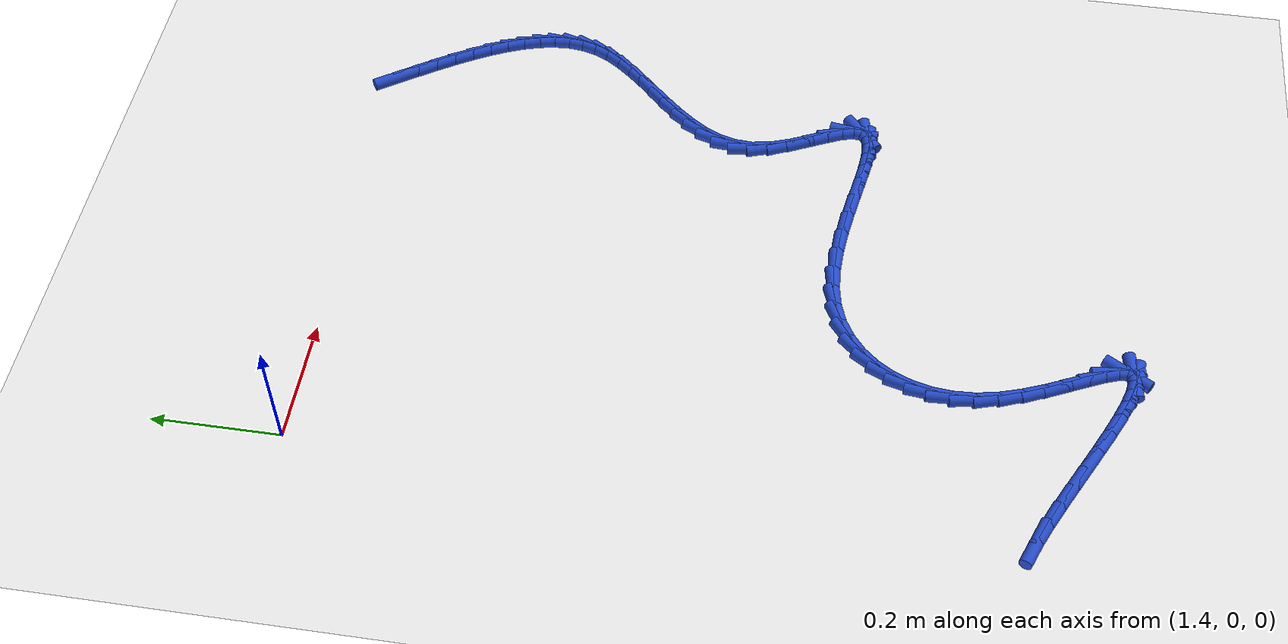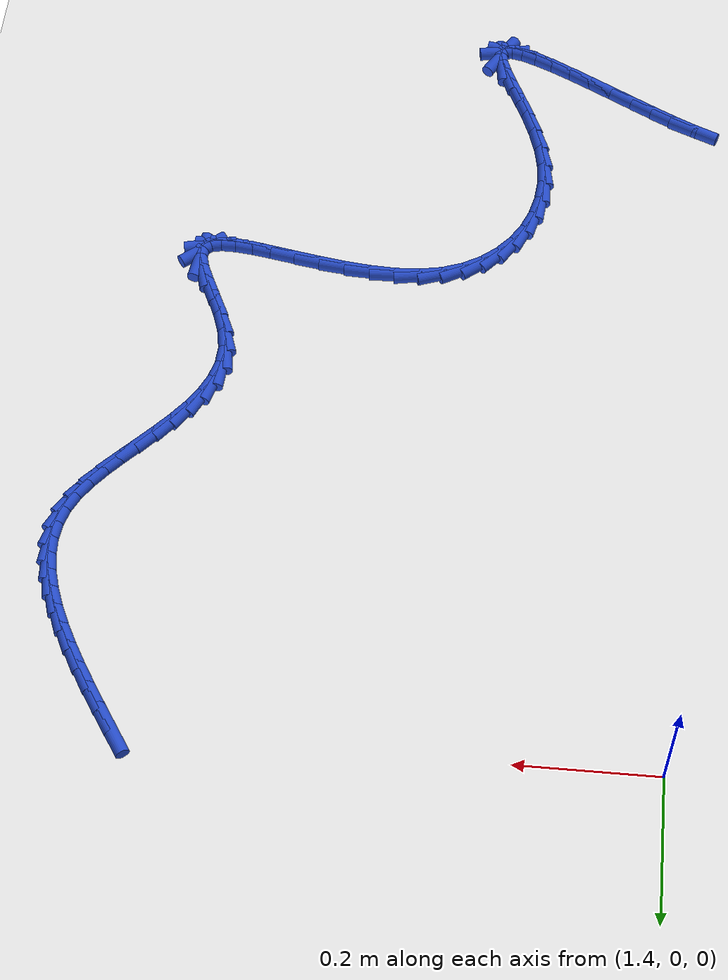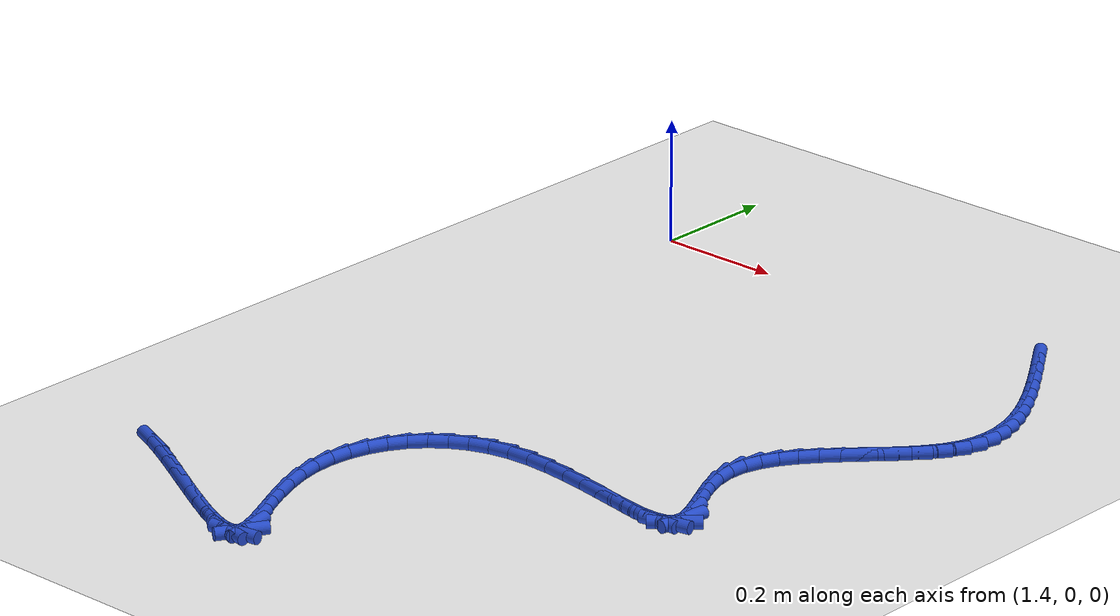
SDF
<sdf version="1.6">
 <world name="default">
  <model name="ground_plane">
   <static>1</static>
   <link name="link">
    <collision name="collision">
     <geometry><plane><normal>0 0 1</normal><size>100 100</size></plane></geometry>
     <surface><friction><ode><mu>100</mu><mu2>50</mu2></ode></friction></surface>
    </collision>
    <visual name="visual">
     <cast_shadows>0</cast_shadows>
     <geometry><plane><normal>0 0 1</normal><size>100 100</size></plane></geometry>
     <material>
      <script><uri>file://media/materials/scripts/gazebo.material</uri><name>Gazebo/WhiteGlow</name></script>
     </material>
    </visual>
   </link>
  </model>
  <model name="line">
   <link name="link_147">
    <pose>2.130528840765255 0.0005263833694277922 0.01 0 1.57 -0.9762441145292009</pose>
    <collision name="collision">
     <geometry><cylinder><radius>0.01</radius><length>0.08</length></cylinder></geometry>
    </collision>
    <visual name="visual">
     <material>
      <script><name>Gazebo/Blue</name><uri>file://media/materials/scripts/gazebo.material</uri></script>
     </material>
     <geometry><cylinder><radius>0.01</radius><length>0.08</length></cylinder></geometry>
    </visual>
   </link>
   <link name="link_148">
    <pose>2.1501936083140567 -0.02855624573181361 0.01 0 1.57 -0.985818714891348</pose>
    <collision name="collision">
     <geometry><cylinder><radius>0.01</radius><length>0.08</length></cylinder></geometry>
    </collision>
    <visual name="visual">
     <material>
      <script><name>Gazebo/Blue</name><uri>file://media/materials/scripts/gazebo.material</uri></script>
     </material>
     <geometry><cylinder><radius>0.01</radius><length>0.08</length></cylinder></geometry>
    </visual>
   </link>
   <link name="link_149">
    <pose>2.1693406343630537 -0.05746588208851436 0.01 0 1.57 -1.0042207485879129</pose>
    <collision name="collision">
     <geometry><cylinder><radius>0.01</radius><length>0.08</length></cylinder></geometry>
    </collision>
    <visual name="visual">
     <material>
      <script><name>Gazebo/Blue</name><uri>file://media/materials/scripts/gazebo.material</uri></script>
     </material>
     <geometry><cylinder><radius>0.01</radius><length>0.08</length></cylinder></geometry>
    </visual>
   </link>
   <link name="link_150">
    <pose>2.1875888722925536 -0.0861514138360954 0.01 0 1.57 -1.032392455782856</pose>
    <collision name="collision">
     <geometry><cylinder><radius>0.01</radius><length>0.08</length></cylinder></geometry>
    </collision>
    <visual name="visual">
     <material>
      <script><name>Gazebo/Blue</name><uri>file://media/materials/scripts/gazebo.material</uri></script>
     </material>
     <geometry><cylinder><radius>0.01</radius><length>0.08</length></cylinder></geometry>
    </visual>
   </link>
   <link name="link_151">
    <pose>2.2045572754828657 -0.11456172910997753 0.01 0 1.57 -1.071751977473961</pose>
    <collision name="collision">
     <geometry><cylinder><radius>0.01</radius><length>0.08</length></cylinder></geometry>
    </collision>
    <visual name="visual">
     <material>
      <script><name>Gazebo/Blue</name><uri>file://media/materials/scripts/gazebo.material</uri></script>
     </material>
     <geometry><cylinder><radius>0.01</radius><length>0.08</length></cylinder></geometry>
    </visual>
   </link>
   <link name="link_152">
    <pose>2.2198647973142975 -0.14264571604558068 0.01 0 1.57 -1.124260930399372</pose>
    <collision name="collision">
     <geometry><cylinder><radius>0.01</radius><length>0.08</length></cylinder></geometry>
    </collision>
    <visual name="visual">
     <material>
      <script><name>Gazebo/Blue</name><uri>file://media/materials/scripts/gazebo.material</uri></script>
     </material>
     <geometry><cylinder><radius>0.01</radius><length>0.08</length></cylinder></geometry>
    </visual>
   </link>
   <link name="link_153">
    <pose>2.233130391167159 -0.17035226277832766 0.01 0 1.57 -1.1924591229250672</pose>
    <collision name="collision">
     <geometry><cylinder><radius>0.01</radius><length>0.08</length></cylinder></geometry>
    </collision>
    <visual name="visual">
     <material>
      <script><name>Gazebo/Blue</name><uri>file://media/materials/scripts/gazebo.material</uri></script>
     </material>
     <geometry><cylinder><radius>0.01</radius><length>0.08</length></cylinder></geometry>
    </visual>
   </link>
   <link name="link_154">
    <pose>2.2439730104217577 -0.1976302574436383 0.01 0 1.57 -1.2793703842895152</pose>
    <collision name="collision">
     <geometry><cylinder><radius>0.01</radius><length>0.08</length></cylinder></geometry>
    </collision>
    <visual name="visual">
     <material>
      <script><name>Gazebo/Blue</name><uri>file://media/materials/scripts/gazebo.material</uri></script>
     </material>
     <geometry><cylinder><radius>0.01</radius><length>0.08</length></cylinder></geometry>
    </visual>
   </link>
   <link name="link_155">
    <pose>2.252011608458402 -0.2244285881769335 0.01 0 1.57 -1.388084231591885</pose>
    <collision name="collision">
     <geometry><cylinder><radius>0.01</radius><length>0.08</length></cylinder></geometry>
    </collision>
    <visual name="visual">
     <material>
      <script><name>Gazebo/Blue</name><uri>file://media/materials/scripts/gazebo.material</uri></script>
     </material>
     <geometry><cylinder><radius>0.01</radius><length>0.08</length></cylinder></geometry>
    </visual>
   </link>
   <link name="link_156">
    <pose>2.256865138657401 -0.25069614311363425 0.01 0 1.57 -1.5207162855102154</pose>
    <collision name="collision">
     <geometry><cylinder><radius>0.01</radius><length>0.08</length></cylinder></geometry>
    </collision>
    <visual name="visual">
     <material>
      <script><name>Gazebo/Blue</name><uri>file://media/materials/scripts/gazebo.material</uri></script>
     </material>
     <geometry><cylinder><radius>0.01</radius><length>0.08</length></cylinder></geometry>
    </visual>
   </link>
   <link name="link_157">
    <pose>2.2581525543990635 -0.2763818103891613 0.01 0 1.57 1.4650263738552232</pose>
    <collision name="collision">
     <geometry><cylinder><radius>0.01</radius><length>0.08</length></cylinder></geometry>
    </collision>
    <visual name="visual">
     <material>
      <script><name>Gazebo/Blue</name><uri>file://media/materials/scripts/gazebo.material</uri></script>
     </material>
     <geometry><cylinder><radius>0.01</radius><length>0.08</length></cylinder></geometry>
    </visual>
   </link>
   <link name="link_158">
    <pose>2.2554928090636963 -0.30143447813893554 0.01 0 1.57 1.2915291639267452</pose>
    <collision name="collision">
     <geometry><cylinder><radius>0.01</radius><length>0.08</length></cylinder></geometry>
    </collision>
    <visual name="visual">
     <material>
      <script><name>Gazebo/Blue</name><uri>file://media/materials/scripts/gazebo.material</uri></script>
     </material>
     <geometry><cylinder><radius>0.01</radius><length>0.08</length></cylinder></geometry>
    </visual>
   </link>
   <link name="link_159">
    <pose>2.2485048560316097 -0.3258030344983779 0.01 0 1.57 1.1149917343752052</pose>
    <collision name="collision">
     <geometry><cylinder><radius>0.01</radius><length>0.08</length></cylinder></geometry>
    </collision>
    <visual name="visual">
     <material>
      <script><name>Gazebo/Blue</name><uri>file://media/materials/scripts/gazebo.material</uri></script>
     </material>
     <geometry><cylinder><radius>0.01</radius><length>0.08</length></cylinder></geometry>
    </visual>
   </link>
   <link name="link_160">
    <pose>2.236909716187266 -0.34945527435203994 0.01 0 1.57 0.9749580835684667</pose>
    <collision name="collision">
     <geometry><cylinder><radius>0.01</radius><length>0.08</length></cylinder></geometry>
    </collision>
    <visual name="visual">
     <material>
      <script><name>Gazebo/Blue</name><uri>file://media/materials/scripts/gazebo.material</uri></script>
     </material>
     <geometry><cylinder><radius>0.01</radius><length>0.08</length></cylinder></geometry>
    </visual>
   </link>
   <link name="link_161">
    <pose>2.221273796473859 -0.372515589948769 0.01 0 1.57 0.8812667807886916</pose>
    <collision name="collision">
     <geometry><cylinder><radius>0.01</radius><length>0.08</length></cylinder></geometry>
    </collision>
    <visual name="visual">
     <material>
      <script><name>Gazebo/Blue</name><uri>file://media/materials/scripts/gazebo.material</uri></script>
     </material>
     <geometry><cylinder><radius>0.01</radius><length>0.08</length></cylinder></geometry>
    </visual>
   </link>
   <link name="link_162">
    <pose>2.2025812181634947 -0.395185749976569 0.01 0 1.57 0.8251549268784025</pose>
    <collision name="collision">
     <geometry><cylinder><radius>0.01</radius><length>0.08</length></cylinder></geometry>
    </collision>
    <visual name="visual">
     <material>
      <script><name>Gazebo/Blue</name><uri>file://media/materials/scripts/gazebo.material</uri></script>
     </material>
     <geometry><cylinder><radius>0.01</radius><length>0.08</length></cylinder></geometry>
    </visual>
   </link>
   <link name="link_163">
    <pose>2.1818190633711687 -0.4176680715831529 0.01 0 1.57 0.8001045874106141</pose>
    <collision name="collision">
     <geometry><cylinder><radius>0.01</radius><length>0.08</length></cylinder></geometry>
    </collision>
    <visual name="visual">
     <material>
      <script><name>Gazebo/Blue</name><uri>file://media/materials/scripts/gazebo.material</uri></script>
     </material>
     <geometry><cylinder><radius>0.01</radius><length>0.08</length></cylinder></geometry>
    </visual>
   </link>
   <link name="link_164">
    <pose>2.1599744142118733 -0.4401648719162339 0.01 0 1.57 0.8027194193833097</pose>
    <collision name="collision">
     <geometry><cylinder><radius>0.01</radius><length>0.08</length></cylinder></geometry>
    </collision>
    <visual name="visual">
     <material>
      <script><name>Gazebo/Blue</name><uri>file://media/materials/scripts/gazebo.material</uri></script>
     </material>
     <geometry><cylinder><radius>0.01</radius><length>0.08</length></cylinder></geometry>
    </visual>
   </link>
   <link name="link_165">
    <pose>2.1380343528006054 -0.46287846812352534 0.01 0 1.57 0.8325398912611454</pose>
    <collision name="collision">
     <geometry><cylinder><radius>0.01</radius><length>0.08</length></cylinder></geometry>
    </collision>
    <visual name="visual">
     <material>
      <script><name>Gazebo/Blue</name><uri>file://media/materials/scripts/gazebo.material</uri></script>
     </material>
     <geometry><cylinder><radius>0.01</radius><length>0.08</length></cylinder></geometry>
    </visual>
   </link>
   <link name="link_166">
    <pose>2.116985961252358 -0.4860111773527403 0.01 0 1.57 0.8918003914497982</pose>
    <collision name="collision">
     <geometry><cylinder><radius>0.01</radius><length>0.08</length></cylinder></geometry>
    </collision>
    <visual name="visual">
     <material>
      <script><name>Gazebo/Blue</name><uri>file://media/materials/scripts/gazebo.material</uri></script>
     </material>
     <geometry><cylinder><radius>0.01</radius><length>0.08</length></cylinder></geometry>
    </visual>
   </link>
   <link name="link_167">
    <pose>2.0978163216821257 -0.5097653167515922 0.01 0 1.57 0.9850915758883707</pose>
    <collision name="collision">
     <geometry><cylinder><radius>0.01</radius><length>0.08</length></cylinder></geometry>
    </collision>
    <visual name="visual">
     <material>
      <script><name>Gazebo/Blue</name><uri>file://media/materials/scripts/gazebo.material</uri></script>
     </material>
     <geometry><cylinder><radius>0.01</radius><length>0.08</length></cylinder></geometry>
    </visual>
   </link>
   <link name="link_168">
    <pose>2.081512516204903 -0.5343432034677938 0.01 0 1.57 1.118178524517499</pose>
    <collision name="collision">
     <geometry><cylinder><radius>0.01</radius><length>0.08</length></cylinder></geometry>
    </collision>
    <visual name="visual">
     <material>
      <script><name>Gazebo/Blue</name><uri>file://media/materials/scripts/gazebo.material</uri></script>
     </material>
     <geometry><cylinder><radius>0.01</radius><length>0.08</length></cylinder></geometry>
    </visual>
   </link>
   <link name="link_169">
    <pose>2.069061626935685 -0.559947154649058 0.01 0 1.57 1.2944096552485327</pose>
    <collision name="collision">
     <geometry><cylinder><radius>0.01</radius><length>0.08</length></cylinder></geometry>
    </collision>
    <visual name="visual">
     <material>
      <script><name>Gazebo/Blue</name><uri>file://media/materials/scripts/gazebo.material</uri></script>
     </material>
     <geometry><cylinder><radius>0.01</radius><length>0.08</length></cylinder></geometry>
    </visual>
   </link>
   <link name="link_170">
    <pose>2.061450735989466 -0.5867794874430995 0.01 0 1.57 1.507765311409249</pose>
    <collision name="collision">
     <geometry><cylinder><radius>0.01</radius><length>0.08</length></cylinder></geometry>
    </collision>
    <visual name="visual">
     <material>
      <script><name>Gazebo/Blue</name><uri>file://media/materials/scripts/gazebo.material</uri></script>
     </material>
     <geometry><cylinder><radius>0.01</radius><length>0.08</length></cylinder></geometry>
    </visual>
   </link>
   <link name="link_171">
    <pose>2.0596669254812405 -0.6150425189976306 0.01 0 1.57 -1.4078340556951325</pose>
    <collision name="collision">
     <geometry><cylinder><radius>0.01</radius><length>0.08</length></cylinder></geometry>
    </collision>
    <visual name="visual">
     <material>
      <script><name>Gazebo/Blue</name><uri>file://media/materials/scripts/gazebo.material</uri></script>
     </material>
     <geometry><cylinder><radius>0.01</radius><length>0.08</length></cylinder></geometry>
    </visual>
   </link>
   <link name="link_172">
    <pose>2.064573603392962 -0.6448847991997427 0.01 0 1.57 -1.2416742061080908</pose>
    <collision name="collision">
     <geometry><cylinder><radius>0.01</radius><length>0.08</length></cylinder></geometry>
    </collision>
    <visual name="visual">
     <material>
      <script><name>Gazebo/Blue</name><uri>file://media/materials/scripts/gazebo.material</uri></script>
     </material>
     <geometry><cylinder><radius>0.01</radius><length>0.08</length></cylinder></geometry>
    </visual>
   </link>
   <link name="link_173">
    <pose>2.075063576343375 -0.6755981600887996 0.01 0 1.57 -1.1534599994224117</pose>
    <collision name="collision">
     <geometry><cylinder><radius>0.01</radius><length>0.08</length></cylinder></geometry>
    </collision>
    <visual name="visual">
     <material>
      <script><name>Gazebo/Blue</name><uri>file://media/materials/scripts/gazebo.material</uri></script>
     </material>
     <geometry><cylinder><radius>0.01</radius><length>0.08</length></cylinder></geometry>
    </visual>
   </link>
   <link name="link_174">
    <pose>2.088448823344532 -0.7057871697805148 0.01 0 1.57 -1.123620685592771</pose>
    <collision name="collision">
     <geometry><cylinder><radius>0.01</radius><length>0.08</length></cylinder></geometry>
    </collision>
    <visual name="visual">
     <material>
      <script><name>Gazebo/Blue</name><uri>file://media/materials/scripts/gazebo.material</uri></script>
     </material>
     <geometry><cylinder><radius>0.01</radius><length>0.08</length></cylinder></geometry>
    </visual>
   </link>
   <link name="link_175">
    <pose>2.101996792901747 -0.7340370367775395 0.01 0 1.57 -1.1554844355275993</pose>
    <collision name="collision">
     <geometry><cylinder><radius>0.01</radius><length>0.08</length></cylinder></geometry>
    </collision>
    <visual name="visual">
     <material>
      <script><name>Gazebo/Blue</name><uri>file://media/materials/scripts/gazebo.material</uri></script>
     </material>
     <geometry><cylinder><radius>0.01</radius><length>0.08</length></cylinder></geometry>
    </visual>
   </link>
   <link name="link_176">
    <pose>2.1129749335203347 -0.7589329695825249 0.01 0 1.57 -1.2959391538753358</pose>
    <collision name="collision">
     <geometry><cylinder><radius>0.01</radius><length>0.08</length></cylinder></geometry>
    </collision>
    <visual name="visual">
     <material>
      <script><name>Gazebo/Blue</name><uri>file://media/materials/scripts/gazebo.material</uri></script>
     </material>
     <geometry><cylinder><radius>0.01</radius><length>0.08</length></cylinder></geometry>
    </visual>
   </link>
   <link name="link_177">
    <pose>2.118650693705609 -0.7790601766981219 0.01 0 1.57 1.4280456699329243</pose>
    <collision name="collision">
     <geometry><cylinder><radius>0.01</radius><length>0.08</length></cylinder></geometry>
    </collision>
    <visual name="visual">
     <material>
      <script><name>Gazebo/Blue</name><uri>file://media/materials/scripts/gazebo.material</uri></script>
     </material>
     <geometry><cylinder><radius>0.01</radius><length>0.08</length></cylinder></geometry>
    </visual>
   </link>
   <link name="link_178">
    <pose>2.1166168405381853 -0.7932108593647582 0.01 0 1.57 0.709885867462146</pose>
    <collision name="collision">
     <geometry><cylinder><radius>0.01</radius><length>0.08</length></cylinder></geometry>
    </collision>
    <visual name="visual">
     <material>
      <script><name>Gazebo/Blue</name><uri>file://media/materials/scripts/gazebo.material</uri></script>
     </material>
     <geometry><cylinder><radius>0.01</radius><length>0.08</length></cylinder></geometry>
    </visual>
   </link>
   <link name="link_179">
    <pose>2.1067896815055693 -0.8016556342183284 0.01 0 1.57 0.21540440081551376</pose>
    <collision name="collision">
     <geometry><cylinder><radius>0.01</radius><length>0.08</length></cylinder></geometry>
    </collision>
    <visual name="visual">
     <material>
      <script><name>Gazebo/Blue</name><uri>file://media/materials/scripts/gazebo.material</uri></script>
     </material>
     <geometry><cylinder><radius>0.01</radius><length>0.08</length></cylinder></geometry>
    </visual>
   </link>
   <link name="link_180">
    <pose>2.090096156091772 -0.8053081598226186 0.01 0 1.57 -0.009873321246339906</pose>
    <collision name="collision">
     <geometry><cylinder><radius>0.01</radius><length>0.08</length></cylinder></geometry>
    </collision>
    <visual name="visual">
     <material>
      <script><name>Gazebo/Blue</name><uri>file://media/materials/scripts/gazebo.material</uri></script>
     </material>
     <geometry><cylinder><radius>0.01</radius><length>0.08</length></cylinder></geometry>
    </visual>
   </link>
   <link name="link_181">
    <pose>2.0674673471344573 -0.8050847310621845 0.01 0 1.57 -0.11468603769733905</pose>
    <collision name="collision">
     <geometry><cylinder><radius>0.01</radius><length>0.08</length></cylinder></geometry>
    </collision>
    <visual name="visual">
     <material>
      <script><name>Gazebo/Blue</name><uri>file://media/materials/scripts/gazebo.material</uri></script>
     </material>
     <geometry><cylinder><radius>0.01</radius><length>0.08</length></cylinder></geometry>
    </visual>
   </link>
   <link name="link_182">
    <pose>2.0398343374712917 -0.8019016428215815 0.01 0 1.57 -0.1633713090087601</pose>
    <collision name="collision">
     <geometry><cylinder><radius>0.01</radius><length>0.08</length></cylinder></geometry>
    </collision>
    <visual name="visual">
     <material>
      <script><name>Gazebo/Blue</name><uri>file://media/materials/scripts/gazebo.material</uri></script>
     </material>
     <geometry><cylinder><radius>0.01</radius><length>0.08</length></cylinder></geometry>
    </visual>
   </link>
   <link name="link_183">
    <pose>2.008128209939939 -0.7966751899853649 0.01 0 1.57 -0.1803393709664734</pose>
    <collision name="collision">
     <geometry><cylinder><radius>0.01</radius><length>0.08</length></cylinder></geometry>
    </collision>
    <visual name="visual">
     <material>
      <script><name>Gazebo/Blue</name><uri>file://media/materials/scripts/gazebo.material</uri></script>
     </material>
     <geometry><cylinder><radius>0.01</radius><length>0.08</length></cylinder></geometry>
    </visual>
   </link>
   <link name="link_184">
    <pose>1.9732800473780656 -0.7903216674380906 0.01 0 1.57 -0.17531205188414328</pose>
    <collision name="collision">
     <geometry><cylinder><radius>0.01</radius><length>0.08</length></cylinder></geometry>
    </collision>
    <visual name="visual">
     <material>
      <script><name>Gazebo/Blue</name><uri>file://media/materials/scripts/gazebo.material</uri></script>
     </material>
     <geometry><cylinder><radius>0.01</radius><length>0.08</length></cylinder></geometry>
    </visual>
   </link>
   <link name="link_185">
    <pose>1.9362209326233353 -0.7837573700643139 0.01 0 1.57 -0.1516419996065423</pose>
    <collision name="collision">
     <geometry><cylinder><radius>0.01</radius><length>0.08</length></cylinder></geometry>
    </collision>
    <visual name="visual">
     <material>
      <script><name>Gazebo/Blue</name><uri>file://media/materials/scripts/gazebo.material</uri></script>
     </material>
     <geometry><cylinder><radius>0.01</radius><length>0.08</length></cylinder></geometry>
    </visual>
   </link>
   <link name="link_186">
    <pose>1.897881948513414 -0.7778985927485904 0.01 0 1.57 -0.10908211775964444</pose>
    <collision name="collision">
     <geometry><cylinder><radius>0.01</radius><length>0.08</length></cylinder></geometry>
    </collision>
    <visual name="visual">
     <material>
      <script><name>Gazebo/Blue</name><uri>file://media/materials/scripts/gazebo.material</uri></script>
     </material>
     <geometry><cylinder><radius>0.01</radius><length>0.08</length></cylinder></geometry>
    </visual>
   </link>
   <link name="link_187">
    <pose>1.8591941778859662 -0.7736616303754753 0.01 0 1.57 -0.044553396880635</pose>
    <collision name="collision">
     <geometry><cylinder><radius>0.01</radius><length>0.08</length></cylinder></geometry>
    </collision>
    <visual name="visual">
     <material>
      <script><name>Gazebo/Blue</name><uri>file://media/materials/scripts/gazebo.material</uri></script>
     </material>
     <geometry><cylinder><radius>0.01</radius><length>0.08</length></cylinder></geometry>
    </visual>
   </link>
   <link name="link_188">
    <pose>1.8210887035786576 -0.7719627778295246 0.01 0 1.57 0.04793950946284346</pose>
    <collision name="collision">
     <geometry><cylinder><radius>0.01</radius><length>0.08</length></cylinder></geometry>
    </collision>
    <visual name="visual">
     <material>
      <script><name>Gazebo/Blue</name><uri>file://media/materials/scripts/gazebo.material</uri></script>
     </material>
     <geometry><cylinder><radius>0.01</radius><length>0.08</length></cylinder></geometry>
    </visual>
   </link>
   <link name="link_189">
    <pose>1.7844966084291531 -0.7737183299952932 0.01 0 1.57 0.1772797217564352</pose>
    <collision name="collision">
     <geometry><cylinder><radius>0.01</radius><length>0.08</length></cylinder></geometry>
    </collision>
    <visual name="visual">
     <material>
      <script><name>Gazebo/Blue</name><uri>file://media/materials/scripts/gazebo.material</uri></script>
     </material>
     <geometry><cylinder><radius>0.01</radius><length>0.08</length></cylinder></geometry>
    </visual>
   </link>
   <link name="link_190">
    <pose>1.7503449367664132 -0.779836962547127 0.01 0 1.57 0.3375057958788652</pose>
    <collision name="collision">
     <geometry><cylinder><radius>0.01</radius><length>0.08</length></cylinder></geometry>
    </collision>
    <visual name="visual">
     <material>
      <script><name>Gazebo/Blue</name><uri>file://media/materials/scripts/gazebo.material</uri></script>
     </material>
     <geometry><cylinder><radius>0.01</radius><length>0.08</length></cylinder></geometry>
    </visual>
   </link>
   <link name="link_191">
    <pose>1.719298308230481 -0.7907322503646624 0.01 0 1.57 0.504582571227682</pose>
    <collision name="collision">
     <geometry><cylinder><radius>0.01</radius><length>0.08</length></cylinder></geometry>
    </collision>
    <visual name="visual">
     <material>
      <script><name>Gazebo/Blue</name><uri>file://media/materials/scripts/gazebo.material</uri></script>
     </material>
     <geometry><cylinder><radius>0.01</radius><length>0.08</length></cylinder></geometry>
    </visual>
   </link>
   <link name="link_192">
    <pose>1.6916025765825597 -0.806027708061996 0.01 0 1.57 0.6732057477473512</pose>
    <collision name="collision">
     <geometry><cylinder><radius>0.01</radius><length>0.08</length></cylinder></geometry>
    </collision>
    <visual name="visual">
     <material>
      <script><name>Gazebo/Blue</name><uri>file://media/materials/scripts/gazebo.material</uri></script>
     </material>
     <geometry><cylinder><radius>0.01</radius><length>0.08</length></cylinder></geometry>
    </visual>
   </link>
   <link name="link_193">
    <pose>1.6674661318003559 -0.8252761695979122 0.01 0 1.57 0.8406609866592692</pose>
    <collision name="collision">
     <geometry><cylinder><radius>0.01</radius><length>0.08</length></cylinder></geometry>
    </collision>
    <visual name="visual">
     <material>
      <script><name>Gazebo/Blue</name><uri>file://media/materials/scripts/gazebo.material</uri></script>
     </material>
     <geometry><cylinder><radius>0.01</radius><length>0.08</length></cylinder></geometry>
    </visual>
   </link>
   <link name="link_194">
    <pose>1.6470973638615753 -0.848030468931196 0.01 0 1.57 1.0049978668650177</pose>
    <collision name="collision">
     <geometry><cylinder><radius>0.01</radius><length>0.08</length></cylinder></geometry>
    </collision>
    <visual name="visual">
     <material>
      <script><name>Gazebo/Blue</name><uri>file://media/materials/scripts/gazebo.material</uri></script>
     </material>
     <geometry><cylinder><radius>0.01</radius><length>0.08</length></cylinder></geometry>
    </visual>
   </link>
   <link name="link_195">
    <pose>1.6307046627439237 -0.8738434400206325 0.01 0 1.57 1.1651223552188699</pose>
    <collision name="collision">
     <geometry><cylinder><radius>0.01</radius><length>0.08</length></cylinder></geometry>
    </collision>
    <visual name="visual">
     <material>
      <script><name>Gazebo/Blue</name><uri>file://media/materials/scripts/gazebo.material</uri></script>
     </material>
     <geometry><cylinder><radius>0.01</radius><length>0.08</length></cylinder></geometry>
    </visual>
   </link>
   <link name="link_196">
    <pose>1.6184964184251065 -0.9022679168250063 0.01 0 1.57 1.3206493124988872</pose>
    <collision name="collision">
     <geometry><cylinder><radius>0.01</radius><length>0.08</length></cylinder></geometry>
    </collision>
    <visual name="visual">
     <material>
      <script><name>Gazebo/Blue</name><uri>file://media/materials/scripts/gazebo.material</uri></script>
     </material>
     <geometry><cylinder><radius>0.01</radius><length>0.08</length></cylinder></geometry>
    </visual>
   </link>
   <link name="link_197">
    <pose>1.6106810208828302 -0.9328567333031025 0.01 0 1.57 1.4716314906826469</pose>
    <collision name="collision">
     <geometry><cylinder><radius>0.01</radius><length>0.08</length></cylinder></geometry>
    </collision>
    <visual name="visual">
     <material>
      <script><name>Gazebo/Blue</name><uri>file://media/materials/scripts/gazebo.material</uri></script>
     </material>
     <geometry><cylinder><radius>0.01</radius><length>0.08</length></cylinder></geometry>
    </visual>
   </link>
   <link name="link_198">
    <pose>1.6074668600948003 -0.9651627234137057 0.01 0 1.57 -1.5233139929308401</pose>
    <collision name="collision">
     <geometry><cylinder><radius>0.01</radius><length>0.08</length></cylinder></geometry>
    </collision>
    <visual name="visual">
     <material>
      <script><name>Gazebo/Blue</name><uri>file://media/materials/scripts/gazebo.material</uri></script>
     </material>
     <geometry><cylinder><radius>0.01</radius><length>0.08</length></cylinder></geometry>
    </visual>
   </link>
   <link name="link_199">
    <pose>1.609062326038723 -0.9987387211156011 0.01 0 1.57 -1.3820852970595312</pose>
    <collision name="collision">
     <geometry><cylinder><radius>0.01</radius><length>0.08</length></cylinder></geometry>
    </collision>
    <visual name="visual">
     <material>
      <script><name>Gazebo/Blue</name><uri>file://media/materials/scripts/gazebo.material</uri></script>
     </material>
     <geometry><cylinder><radius>0.01</radius><length>0.08</length></cylinder></geometry>
    </visual>
   </link>
   <link name="link_200">
    <pose>1.6156294397065376 -1.0331244815852079 0.01 0 1.57 -1.2676654190471242</pose>
    <collision name="collision">
     <geometry><cylinder><radius>0.01</radius><length>0.08</length></cylinder></geometry>
    </collision>
    <visual name="visual">
     <material>
      <script><name>Gazebo/Blue</name><uri>file://media/materials/scripts/gazebo.material</uri></script>
     </material>
     <geometry><cylinder><radius>0.01</radius><length>0.08</length></cylinder></geometry>
    </visual>
   </link>
   <link name="link_201">
    <pose>1.6264126477617222 -1.0676009500476846 0.01 0 1.57 -1.1913750491854045</pose>
    <collision name="collision">
     <geometry><cylinder><radius>0.01</radius><length>0.08</length></cylinder></geometry>
    </collision>
    <visual name="visual">
     <material>
      <script><name>Gazebo/Blue</name><uri>file://media/materials/scripts/gazebo.material</uri></script>
     </material>
     <geometry><cylinder><radius>0.01</radius><length>0.08</length></cylinder></geometry>
    </visual>
   </link>
   <link name="link_202">
    <pose>1.639814638290952 -1.1012116462799448 0.01 0 1.57 -1.1455520131933878</pose>
    <collision name="collision">
     <geometry><cylinder><radius>0.01</radius><length>0.08</length></cylinder></geometry>
    </collision>
    <visual name="visual">
     <material>
      <script><name>Gazebo/Blue</name><uri>file://media/materials/scripts/gazebo.material</uri></script>
     </material>
     <geometry><cylinder><radius>0.01</radius><length>0.08</length></cylinder></geometry>
    </visual>
   </link>
   <link name="link_203">
    <pose>1.6542069289067436 -1.1329912981510977 0.01 0 1.57 -1.127713341020458</pose>
    <collision name="collision">
     <geometry><cylinder><radius>0.01</radius><length>0.08</length></cylinder></geometry>
    </collision>
    <visual name="visual">
     <material>
      <script><name>Gazebo/Blue</name><uri>file://media/materials/scripts/gazebo.material</uri></script>
     </material>
     <geometry><cylinder><radius>0.01</radius><length>0.08</length></cylinder></geometry>
    </visual>
   </link>
   <link name="link_204">
    <pose>1.6679610372216163 -1.1619746335302539 0.01 0 1.57 -1.1434128949482967</pose>
    <collision name="collision">
     <geometry><cylinder><radius>0.01</radius><length>0.08</length></cylinder></geometry>
    </collision>
    <visual name="visual">
     <material>
      <script><name>Gazebo/Blue</name><uri>file://media/materials/scripts/gazebo.material</uri></script>
     </material>
     <geometry><cylinder><radius>0.01</radius><length>0.08</length></cylinder></geometry>
    </visual>
   </link>
   <link name="link_205">
    <pose>1.6794484808480867 -1.1871963802865224 0.01 0 1.57 -1.216022109907062</pose>
    <collision name="collision">
     <geometry><cylinder><radius>0.01</radius><length>0.08</length></cylinder></geometry>
    </collision>
    <visual name="visual">
     <material>
      <script><name>Gazebo/Blue</name><uri>file://media/materials/scripts/gazebo.material</uri></script>
     </material>
     <geometry><cylinder><radius>0.01</radius><length>0.08</length></cylinder></geometry>
    </visual>
   </link>
   <link name="link_206">
    <pose>1.687040777398673 -1.207691266289014 0.01 0 1.57 -1.431946758152902</pose>
    <collision name="collision">
     <geometry><cylinder><radius>0.01</radius><length>0.08</length></cylinder></geometry>
    </collision>
    <visual name="visual">
     <material>
      <script><name>Gazebo/Blue</name><uri>file://media/materials/scripts/gazebo.material</uri></script>
     </material>
     <geometry><cylinder><radius>0.01</radius><length>0.08</length></cylinder></geometry>
    </visual>
   </link>
   <link name="link_207">
    <pose>1.6891094444858927 -1.2224940194068386 0.01 0 1.57 1.0314352577036667</pose>
    <collision name="collision">
     <geometry><cylinder><radius>0.01</radius><length>0.08</length></cylinder></geometry>
    </collision>
    <visual name="visual">
     <material>
      <script><name>Gazebo/Blue</name><uri>file://media/materials/scripts/gazebo.material</uri></script>
     </material>
     <geometry><cylinder><radius>0.01</radius><length>0.08</length></cylinder></geometry>
    </visual>
   </link>
   <link name="link_208">
    <pose>1.6841719008206708 -1.2307430366014216 0.01 0 1.57 0.1591912347937697</pose>
    <collision name="collision">
     <geometry><cylinder><radius>0.01</radius><length>0.08</length></cylinder></geometry>
    </collision>
    <visual name="visual">
     <material>
      <script><name>Gazebo/Blue</name><uri>file://media/materials/scripts/gazebo.material</uri></script>
     </material>
     <geometry><cylinder><radius>0.01</radius><length>0.08</length></cylinder></geometry>
    </visual>
   </link>
   <link name="link_209">
    <pose>1.6722631022312746 -1.2326549911270228 0.01 0 1.57 -0.19630769166667203</pose>
    <collision name="collision">
     <geometry><cylinder><radius>0.01</radius><length>0.08</length></cylinder></geometry>
    </collision>
    <visual name="visual">
     <material>
      <script><name>Gazebo/Blue</name><uri>file://media/materials/scripts/gazebo.material</uri></script>
     </material>
     <geometry><cylinder><radius>0.01</radius><length>0.08</length></cylinder></geometry>
    </visual>
   </link>
   <link name="link_210">
    <pose>1.6543184432558558 -1.2290863572041646 0.01 0 1.57 -0.3414120811109976</pose>
    <collision name="collision">
     <geometry><cylinder><radius>0.01</radius><length>0.08</length></cylinder></geometry>
    </collision>
    <visual name="visual">
     <material>
      <script><name>Gazebo/Blue</name><uri>file://media/materials/scripts/gazebo.material</uri></script>
     </material>
     <geometry><cylinder><radius>0.01</radius><length>0.08</length></cylinder></geometry>
    </visual>
   </link>
   <link name="link_211">
    <pose>1.6312851585498331 -1.2209020219729674 0.01 0 1.57 -0.41383741654700446</pose>
    <collision name="collision">
     <geometry><cylinder><radius>0.01</radius><length>0.08</length></cylinder></geometry>
    </collision>
    <visual name="visual">
     <material>
      <script><name>Gazebo/Blue</name><uri>file://media/materials/scripts/gazebo.material</uri></script>
     </material>
     <geometry><cylinder><radius>0.01</radius><length>0.08</length></cylinder></geometry>
    </visual>
   </link>
   <link name="link_212">
    <pose>1.6041104827686237 -1.208966872573551 0.01 0 1.57 -0.45403049608204016</pose>
    <collision name="collision">
     <geometry><cylinder><radius>0.01</radius><length>0.08</length></cylinder></geometry>
    </collision>
    <visual name="visual">
     <material>
      <script><name>Gazebo/Blue</name><uri>file://media/materials/scripts/gazebo.material</uri></script>
     </material>
     <geometry><cylinder><radius>0.01</radius><length>0.08</length></cylinder></geometry>
    </visual>
   </link>
   <link name="link_213">
    <pose>1.5737416505676451 -1.1941457961460333 0.01 0 1.57 -0.4766654124530099</pose>
    <collision name="collision">
     <geometry><cylinder><radius>0.01</radius><length>0.08</length></cylinder></geometry>
    </collision>
    <visual name="visual">
     <material>
      <script><name>Gazebo/Blue</name><uri>file://media/materials/scripts/gazebo.material</uri></script>
     </material>
     <geometry><cylinder><radius>0.01</radius><length>0.08</length></cylinder></geometry>
    </visual>
   </link>
   <link name="link_214">
    <pose>1.5411258966023158 -1.1773036798305343 0.01 0 1.57 -0.4878898312570241</pose>
    <collision name="collision">
     <geometry><cylinder><radius>0.01</radius><length>0.08</length></cylinder></geometry>
    </collision>
    <visual name="visual">
     <material>
      <script><name>Gazebo/Blue</name><uri>file://media/materials/scripts/gazebo.material</uri></script>
     </material>
     <geometry><cylinder><radius>0.01</radius><length>0.08</length></cylinder></geometry>
    </visual>
   </link>
   <link name="link_215">
    <pose>1.5072104555280539 -1.1593054107671747 0.01 0 1.57 -0.49026000888448773</pose>
    <collision name="collision">
     <geometry><cylinder><radius>0.01</radius><length>0.08</length></cylinder></geometry>
    </collision>
    <visual name="visual">
     <material>
      <script><name>Gazebo/Blue</name><uri>file://media/materials/scripts/gazebo.material</uri></script>
     </material>
     <geometry><cylinder><radius>0.01</radius><length>0.08</length></cylinder></geometry>
    </visual>
   </link>
   <link name="link_216">
    <pose>1.472942562000278 -1.1410158760960734 0.01 0 1.57 -0.4843203136403856</pose>
    <collision name="collision">
     <geometry><cylinder><radius>0.01</radius><length>0.08</length></cylinder></geometry>
    </collision>
    <visual name="visual">
     <material>
      <script><name>Gazebo/Blue</name><uri>file://media/materials/scripts/gazebo.material</uri></script>
     </material>
     <geometry><cylinder><radius>0.01</radius><length>0.08</length></cylinder></geometry>
    </visual>
   </link>
   <link name="link_217">
    <pose>1.439269450674404 -1.1232999629573492 0.01 0 1.57 -0.4689085066156967</pose>
    <collision name="collision">
     <geometry><cylinder><radius>0.01</radius><length>0.08</length></cylinder></geometry>
    </collision>
    <visual name="visual">
     <material>
      <script><name>Gazebo/Blue</name><uri>file://media/materials/scripts/gazebo.material</uri></script>
     </material>
     <geometry><cylinder><radius>0.01</radius><length>0.08</length></cylinder></geometry>
    </visual>
   </link>
   <link name="link_218">
    <pose>1.4071383562058501 -1.1070225584911215 0.01 0 1.57 -0.44012851897629934</pose>
    <collision name="collision">
     <geometry><cylinder><radius>0.01</radius><length>0.08</length></cylinder></geometry>
    </collision>
    <visual name="visual">
     <material>
      <script><name>Gazebo/Blue</name><uri>file://media/materials/scripts/gazebo.material</uri></script>
     </material>
     <geometry><cylinder><radius>0.01</radius><length>0.08</length></cylinder></geometry>
    </visual>
   </link>
   <link name="link_219">
    <pose>1.3773586548362429 -1.0929981791871164 0.01 0 1.57 -0.38883140906913005</pose>
    <collision name="collision">
     <geometry><cylinder><radius>0.01</radius><length>0.08</length></cylinder></geometry>
    </collision>
    <visual name="visual">
     <material>
      <script><name>Gazebo/Blue</name><uri>file://media/materials/scripts/gazebo.material</uri></script>
     </material>
     <geometry><cylinder><radius>0.01</radius><length>0.08</length></cylinder></geometry>
    </visual>
   </link>
  </model>
 </world>
</sdf>
